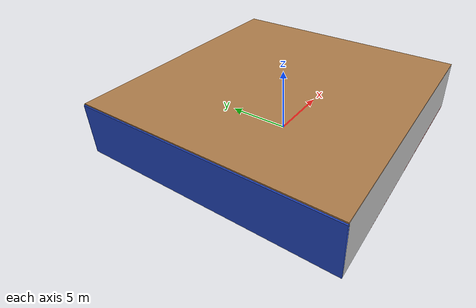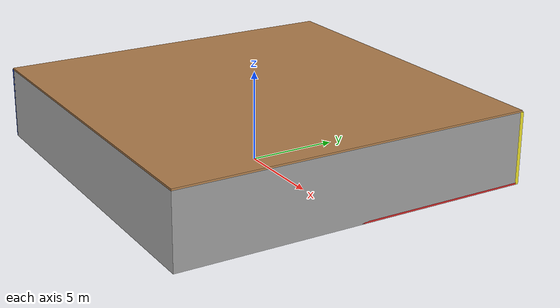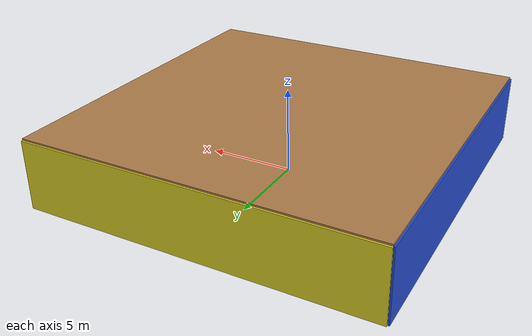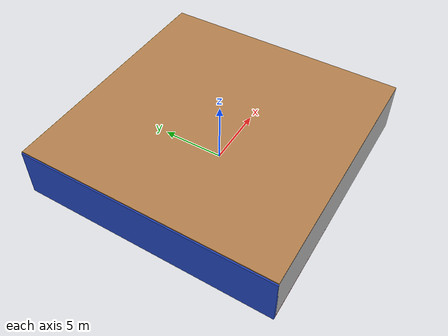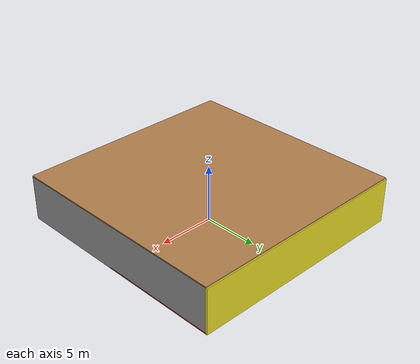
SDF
<sdf version="1.4">
 <world name="default">
  <physics type="ode">
   <max_step_size>0.001</max_step_size>
   <real_time_factor>1</real_time_factor>
   <real_time_update_rate>1000</real_time_update_rate>
   <gravity>0 0 -9.8</gravity>
  </physics>
  <scene><ambient>0.4 0.4 0.4 1</ambient><background>0.7 0.7 0.7 1</background><shadows>1</shadows></scene>
  <model name="Surrounding">
   <static>1</static>
   <link name="Ceiling">
    <collision name="Ceiling_Collision"><geometry><box><size>20 20 0.1</size></box></geometry></collision>
    <visual name="Ceiling_Visual">
     <geometry><box><size>20 20 0.1</size></box></geometry>
     <material>
      <script><uri>file://media/materials/scripts/gazebo.material</uri><name>Gazebo/WoodFloor</name></script>
     </material>
    </visual>
    <pose>0 0 4.05 0 0 0</pose>
   </link>
   <link name="Wall_South">
    <collision name="Wall_South_Collision">
     <geometry><box><size>20 0 4</size></box></geometry>
     <pose>0 0 2 0 -0 0</pose>
    </collision>
    <visual name="Wall_South_Visual">
     <pose>0 0 2 0 -0 0</pose>
     <geometry><box><size>20 0 4</size></box></geometry>
     <material>
      <script><uri>file://media/materials/scripts/gazebo.material</uri><name>Gazebo/LightOn</name></script>
     </material>
    </visual>
    <velocity_decay><linear>0</linear><angular>0</angular></velocity_decay>
    <pose>0 -10 0 0 -0 0</pose>
   </link>
   <link name="Wall_East">
    <collision name="Wall_21_Collision">
     <geometry><box><size>20 0 4</size></box></geometry>
     <pose>0 0 2 0 -0 0</pose>
    </collision>
    <visual name="Wall_21_Visual">
     <pose>0 0 2 0 -0 0</pose>
     <geometry><box><size>20 0 4</size></box></geometry>
     <material>
      <script><uri>file://media/materials/scripts/gazebo.material</uri><name>Gazebo/GreyGradientSky</name></script>
     </material>
    </visual>
    <velocity_decay><linear>0</linear><angular>0</angular></velocity_decay>
    <pose>10 0 0 0 -0 1.5708</pose>
   </link>
   <link name="Wall_North">
    <collision name="Wall_22_Collision">
     <geometry><box><size>20 0.2 4</size></box></geometry>
     <pose>0 0 2 0 -0 0</pose>
    </collision>
    <visual name="Wall_22_Visual">
     <pose>0 0 2 0 -0 0</pose>
     <geometry><box><size>20 0.2 4</size></box></geometry>
     <material>
      <script><uri>file://media/materials/scripts/gazebo.material</uri><name>Gazebo/YellowGlow</name></script>
     </material>
    </visual>
    <velocity_decay><linear>0</linear><angular>0</angular></velocity_decay>
    <pose>0 10 0 0 -0 0</pose>
   </link>
   <link name="Wall_West">
    <collision name="Wall_23_Collision">
     <geometry><box><size>20 0.2 4</size></box></geometry>
     <pose>0 0 2 0 -0 0</pose>
    </collision>
    <visual name="Wall_23_Visual">
     <pose>0 0 2 0 -0 0</pose>
     <geometry><box><size>20 0.2 4</size></box></geometry>
     <material>
      <script><uri>file://media/materials/scripts/gazebo.material</uri><name>Gazebo/BlueLaser</name></script>
     </material>
    </visual>
    <velocity_decay><linear>0</linear><angular>0</angular></velocity_decay>
    <pose>-10 0 0 0 0 -1.5708</pose>
   </link>
   <link name="Ground_link">
    <collision name="collision">
     <pose>0 0 .05 0 -0 0</pose>
     <geometry><box><size>20 20 0.1</size></box></geometry>
    </collision>
    <visual name="visual">
     <pose>0 0 .05 0 -0 0</pose>
     <geometry><box><size>20 20 0.1</size></box></geometry>
     <material>
      <script><uri>file://media/materials/scripts/gazebo.material</uri><name>Gazebo/RedBright</name></script>
     </material>
    </visual>
   </link>
   <static>1</static>
  </model>
  <spherical_coordinates>
   <surface_model>EARTH_WGS84</surface_model>
   <latitude_deg>0</latitude_deg>
   <longitude_deg>0</longitude_deg>
   <elevation>0</elevation>
   <heading_deg>0</heading_deg>
  </spherical_coordinates>
  <light name="lightball_0" type="diffuse">
   <diffuse>0.8 0.8 0.8 1</diffuse>
   <specular>0.2 0.2 0.2 1</specular>
   <attenuation>
    <range>100</range>
    <constant>0.7</constant>
    <linear>0.01</linear>
    <quadratic>0.001</quadratic>
   </attenuation>
   <direction>-0.5 0.1 -0.9</direction>
   <pose>9.04491072447 7.99038944016 0.963254562277 0 0 0</pose>
  </light>
  <light name="lightball_1" type="diffuse">
   <diffuse>0.8 0.8 0.8 1</diffuse>
   <specular>0.2 0.2 0.2 1</specular>
   <attenuation>
    <range>100</range>
    <constant>0.7</constant>
    <linear>0.01</linear>
    <quadratic>0.001</quadratic>
   </attenuation>
   <direction>-0.5 0.1 -0.9</direction>
   <pose>0.87123619087 -9.29119205396 2.59838822255 0 0 0</pose>
  </light>
  <light name="lightball_2" type="diffuse">
   <diffuse>0.8 0.8 0.8 1</diffuse>
   <specular>0.2 0.2 0.2 1</specular>
   <attenuation>
    <range>100</range>
    <constant>0.7</constant>
    <linear>0.01</linear>
    <quadratic>0.001</quadratic>
   </attenuation>
   <direction>-0.5 0.1 -0.9</direction>
   <pose>7.2574178799 -9.87923759161 2.21166419245 0 0 0</pose>
  </light>
  <light name="lightball_3" type="diffuse">
   <diffuse>0.8 0.8 0.8 1</diffuse>
   <specular>0.2 0.2 0.2 1</specular>
   <attenuation>
    <range>100</range>
    <constant>0.7</constant>
    <linear>0.01</linear>
    <quadratic>0.001</quadratic>
   </attenuation>
   <direction>-0.5 0.1 -0.9</direction>
   <pose>5.75268881891 0.912127478922 3.82390334814 0 0 0</pose>
  </light>
  <light name="lightball_4" type="diffuse">
   <diffuse>0.8 0.8 0.8 1</diffuse>
   <specular>0.2 0.2 0.2 1</specular>
   <attenuation>
    <range>100</range>
    <constant>0.7</constant>
    <linear>0.01</linear>
    <quadratic>0.001</quadratic>
   </attenuation>
   <direction>-0.5 0.1 -0.9</direction>
   <pose>3.15358595679 1.07987794287 3.75719714294 0 0 0</pose>
  </light>
  <light name="lightball_5" type="diffuse">
   <diffuse>0.8 0.8 0.8 1</diffuse>
   <specular>0.2 0.2 0.2 1</specular>
   <attenuation>
    <range>100</range>
    <constant>0.7</constant>
    <linear>0.01</linear>
    <quadratic>0.001</quadratic>
   </attenuation>
   <direction>-0.5 0.1 -0.9</direction>
   <pose>-5.58897882134 3.2289750555 2.60085259324 0 0 0</pose>
  </light>
  <light name="lightball_6" type="diffuse">
   <diffuse>0.8 0.8 0.8 1</diffuse>
   <specular>0.2 0.2 0.2 1</specular>
   <attenuation>
    <range>100</range>
    <constant>0.7</constant>
    <linear>0.01</linear>
    <quadratic>0.001</quadratic>
   </attenuation>
   <direction>-0.5 0.1 -0.9</direction>
   <pose>-1.74673041327 2.74822320804 2.4697032729 0 0 0</pose>
  </light>
  <light name="lightball_7" type="diffuse">
   <diffuse>0.8 0.8 0.8 1</diffuse>
   <specular>0.2 0.2 0.2 1</specular>
   <attenuation>
    <range>100</range>
    <constant>0.7</constant>
    <linear>0.01</linear>
    <quadratic>0.001</quadratic>
   </attenuation>
   <direction>-0.5 0.1 -0.9</direction>
   <pose>9.01002969153 7.16255431252 3.04663761216 0 0 0</pose>
  </light>
  <light name="lightball_8" type="diffuse">
   <diffuse>0.8 0.8 0.8 1</diffuse>
   <specular>0.2 0.2 0.2 1</specular>
   <attenuation>
    <range>100</range>
    <constant>0.7</constant>
    <linear>0.01</linear>
    <quadratic>0.001</quadratic>
   </attenuation>
   <direction>-0.5 0.1 -0.9</direction>
   <pose>-5.17793793034 -1.16438641344 1.26059885118 0 0 0</pose>
  </light>
  <light name="lightball_9" type="diffuse">
   <diffuse>0.8 0.8 0.8 1</diffuse>
   <specular>0.2 0.2 0.2 1</specular>
   <attenuation>
    <range>100</range>
    <constant>0.7</constant>
    <linear>0.01</linear>
    <quadratic>0.001</quadratic>
   </attenuation>
   <direction>-0.5 0.1 -0.9</direction>
   <pose>-4.5894691197 4.82385244677 3.78101526947 0 0 0</pose>
  </light>
  <light name="lightball_10" type="diffuse">
   <diffuse>0.8 0.8 0.8 1</diffuse>
   <specular>0.2 0.2 0.2 1</specular>
   <attenuation>
    <range>100</range>
    <constant>0.7</constant>
    <linear>0.01</linear>
    <quadratic>0.001</quadratic>
   </attenuation>
   <direction>-0.5 0.1 -0.9</direction>
   <pose>6.58714728667 -2.6998419966 2.57934466811 0 0 0</pose>
  </light>
  <include><uri>model://table</uri><pose>-2.24034249246 -4.58696051606 0 0 0 2.7552059203</pose></include>
  <include><uri>model://cabinet</uri><pose>1.79446947946 -1.87435207912 0 0 0 2.39013179855</pose></include>
  <include>
   <uri>model://construction_cone</uri>
   <pose>4.95838077017 -1.93293038116 0 0 0 0.421912186974</pose>
  </include>
  <include>
   <uri>model://construction_cone</uri>
   <pose>6.97340595801 -5.12514659192 0 0 0 2.08029502478</pose>
  </include>
  <include>
   <uri>model://robocup_3Dsim_goal</uri>
   <pose>7.8275674874 7.51754528121 0 0 0 0.121888947222</pose>
  </include>
 </world>
</sdf>

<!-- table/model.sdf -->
<sdf version="1.5">
  <model name="table">
    <static>true</static>
    <link name="link">
      <collision name="surface">
        <pose>0 0 1.0 0 0 0</pose>
        <geometry>
          <box>
            <size>1.5 0.8 0.03</size>
          </box>
        </geometry>
        <surface>
          <friction>
            <ode>
              <mu>0.6</mu>
              <mu2>0.6</mu2>
            </ode>
          </friction>
        </surface>
      </collision>
      <visual name="visual1">
        <pose>0 0 1.0 0 0 0</pose>
        <geometry>
          <box>
            <size>1.5 0.8 0.03</size>
          </box>
        </geometry>
        <material>
          <script>
            <uri>model://media/materials/scripts/gazebo.material</uri>
            <name>Gazebo/Wood</name>
          </script>
        </material>
      </visual>
      <collision name="front_left_leg">
        <pose>0.68 0.38 0.5 0 0 0</pose>
        <geometry>
          <cylinder>
            <radius>0.02</radius>
            <length>1.0</length>
          </cylinder>
        </geometry>
      </collision>
      <visual name="front_left_leg">
        <pose>0.68 0.38 0.5 0 0 0</pose>
        <geometry>
          <cylinder>
            <radius>0.02</radius>
            <length>1.0</length>
          </cylinder>
        </geometry>
        <material>
          <script>
            <uri>model://media/materials/scripts/gazebo.material</uri>
            <name>Gazebo/Grey</name>
          </script>
        </material>
      </visual>
      <collision name="front_right_leg">
        <pose>0.68 -0.38 0.5 0 0 0</pose>
        <geometry>
          <cylinder>
            <radius>0.02</radius>
            <length>1.0</length>
          </cylinder>
        </geometry>
      </collision>
      <visual name="front_right_leg">
        <pose>0.68 -0.38 0.5 0 0 0</pose>
        <geometry>
          <cylinder>
            <radius>0.02</radius>
            <length>1.0</length>
          </cylinder>
        </geometry>
        <material>
          <script>
            <uri>model://media/materials/scripts/gazebo.material</uri>
            <name>Gazebo/Grey</name>
          </script>
        </material>
      </visual>
      <collision name="back_right_leg">
        <pose>-0.68 -0.38 0.5 0 0 0</pose>
        <geometry>
          <cylinder>
            <radius>0.02</radius>
            <length>1.0</length>
          </cylinder>
        </geometry>
      </collision>
      <visual name="back_right_leg">
        <pose>-0.68 -0.38 0.5 0 0 0</pose>
        <geometry>
          <cylinder>
            <radius>0.02</radius>
            <length>1.0</length>
          </cylinder>
        </geometry>
        <material>
          <script>
            <uri>model://media/materials/scripts/gazebo.material</uri>
            <name>Gazebo/Grey</name>
          </script>
        </material>
      </visual>
      <collision name="back_left_leg">
        <pose>-0.68 0.38 0.5 0 0 0</pose>
        <geometry>
          <cylinder>
            <radius>0.02</radius>
            <length>1.0</length>
          </cylinder>
        </geometry>
      </collision>
      <visual name="back_left_leg">
        <pose>-0.68 0.38 0.5 0 0 0</pose>
        <geometry>
          <cylinder>
            <radius>0.02</radius>
            <length>1.0</length>
          </cylinder>
        </geometry>
        <material>
          <script>
            <uri>model://media/materials/scripts/gazebo.material</uri>
            <name>Gazebo/Grey</name>
          </script>
        </material>
      </visual>
    </link>
  </model>
</sdf>

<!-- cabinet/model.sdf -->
<sdf version="1.5">
  <model name="cabinet">
    <static>true</static>
    <link name="cabinet_bottom_plate">
      <inertial>
        <pose>0 0 -1 0 0 0</pose>
        <inertia>
          <ixx>2.050000</ixx>
          <ixy>0</ixy>
          <ixz>0</ixz>
          <iyy>2.050000</iyy>
          <iyz>0</iyz>
          <izz>2.050000</izz>
        </inertia>
        <mass>25.000000</mass>
      </inertial>
      <collision name="cabinet_bottom_plate_geom">
        <pose>0 0 0.010000 0 0 0</pose>
        <geometry>
          <box>
            <size>0.450000 0.450000 0.020000</size>
          </box>
        </geometry>
      </collision>
      <visual name="cabinet_bottom_plate_geom_visual">
        <pose>0 0 0.010000 0 0 0</pose>
        <geometry>
          <box>
            <size>0.450000 0.450000 0.020000</size>
          </box>
        </geometry>
        <material>
          <script>
            <uri>model://media/materials/scripts/gazebo.material</uri>
            <name>Gazebo/Wood</name>
          </script>
        </material>
      </visual>
      <collision name="cabinet_bottom_plate_geom_cabinet_back_plate">
        <pose>0.235000 0 0.510000 0 0 0</pose>
        <geometry>
          <box>
            <size>0.020000 0.450000 1.020000</size>
          </box>
        </geometry>
      </collision>
      <visual name="cabinet_bottom_plate_geom_cabinet_back_plate_visual">
        <pose>0.235000 0 0.510000 0 0 0</pose>
        <geometry>
          <box>
            <size>0.020000 0.450000 1.020000</size>
          </box>
        </geometry>
        <material>
          <script>
            <uri>model://media/materials/scripts/gazebo.material</uri>
            <name>Gazebo/Wood</name>
          </script>
        </material>
      </visual>
      <collision name="cabinet_bottom_plate_geom_cabinet_left_plate">
        <pose>0 0.235000 0.510000 0 0 0</pose>
        <geometry>
          <box>
            <size>0.450000 0.020000 1.020000</size>
          </box>
        </geometry>
      </collision>
      <visual name="cabinet_bottom_plate_geom_cabinet_left_plate_visual">
        <pose>0 0.235000 0.510000 0 0 0</pose>
        <geometry>
          <box>
            <size>0.450000 0.020000 1.020000</size>
          </box>
        </geometry>
        <material>
          <script>
            <uri>model://media/materials/scripts/gazebo.material</uri>
            <name>Gazebo/Wood</name>
          </script>
        </material>
      </visual>
      <collision name="cabinet_bottom_plate_geom_cabinet_middle_plate">
        <pose>0 0 0.510000 0 0 0</pose>
        <geometry>
          <box>
            <size>0.450000 0.450000 0.020000</size>
          </box>
        </geometry>
      </collision>
      <visual name="cabinet_bottom_plate_geom_cabinet_middle_plate_visual">
        <pose>0 0 0.510000 0 0 0</pose>
        <geometry>
          <box>
            <size>0.450000 0.450000 0.020000</size>
          </box>
        </geometry>
        <material>
          <script>
            <uri>model://media/materials/scripts/gazebo.material</uri>
            <name>Gazebo/Wood</name>
          </script>
        </material>
      </visual>
      <collision name="cabinet_bottom_plate_geom_cabinet_right_plate">
        <pose>0 -0.235000 0.510000 0 0 0</pose>
        <geometry>
          <box>
            <size>0.450000 0.020000 1.020000</size>
          </box>
        </geometry>
      </collision>
      <visual name="cabinet_bottom_plate_geom_cabinet_right_plate_visual">
        <pose>0 -0.235000 0.510000 0 0 0</pose>
        <geometry>
          <box>
            <size>0.450000 0.020000 1.020000</size>
          </box>
        </geometry>
        <material>
          <script>
            <uri>model://media/materials/scripts/gazebo.material</uri>
            <name>Gazebo/Wood</name>
          </script>
        </material>
      </visual>
      <collision name="cabinet_bottom_plate_geom_cabinet_top_plate">
        <pose>0 0 1.010000 0 0 0</pose>
        <geometry>
          <box>
            <size>0.450000 0.450000 0.020000</size>
          </box>
        </geometry>
      </collision>
      <visual name="cabinet_bottom_plate_geom_cabinet_top_plate_visual">
        <pose>0 0 1.010000 0 0 0</pose>
        <geometry>
          <box>
            <size>0.450000 0.450000 0.020000</size>
          </box>
        </geometry>
        <material>
          <script>
            <uri>model://media/materials/scripts/gazebo.material</uri>
            <name>Gazebo/Wood</name>
          </script>
        </material>
      </visual>
    </link>
  </model>
</sdf>

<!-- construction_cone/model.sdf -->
<sdf version="1.5">
  <model name="Construction Cone">
    <link name="link">
      <collision name="collision">
        <geometry>
          <mesh>
            <scale>10 10 10</scale>
            <uri>file://isr-testbed/construction_cone/meshes/construction_cone.dae</uri>
          </mesh>
        </geometry>
      </collision>
      <visual name="visual">
        <geometry>
          <mesh>
            <scale>10 10 10</scale>
            <uri>file://isr-testbed/construction_cone/meshes/construction_cone.dae</uri>
          </mesh>
        </geometry>
      </visual>
    </link>
  </model>
</sdf>

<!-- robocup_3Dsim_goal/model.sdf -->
<sdf version="1.5">
  <model name="robocup_3d_goal">
    <static>true</static>
    <link name="left_post">
      <pose>0 1.05 0.45 0 0 0</pose>
      <collision name="collision">
        <geometry>
          <cylinder>
            <radius>0.05</radius>
            <length>0.9</length>
          </cylinder>
        </geometry>
      </collision>
      <visual name="visual">
        <geometry>
          <cylinder>
            <radius>0.05</radius>
            <length>0.9</length>
          </cylinder>
        </geometry>
        <material>
          <script>
            <uri>file://media/materials/scripts/gazebo.material</uri>
            <name>Gazebo/ZincYellow</name>
          </script>
        </material>
      </visual>
    </link>
    <link name="left_support_horiz_lower">
      <pose>0.30 1.05 0.01 0 0 0</pose>
      <collision name="collision">
        <geometry>
          <box>
            <size>0.50 0.02 0.02</size>
          </box>
        </geometry>
      </collision>
      <visual name="visual">
        <geometry>
          <box>
            <size>0.50 0.02 0.02</size>
          </box>
        </geometry>
        <material>
          <script>
            <uri>file://media/materials/scripts/gazebo.material</uri>
            <name>Gazebo/White</name>
          </script>
        </material>
      </visual>
    </link>
    <link name="left_support_horiz_upper">
      <pose>0.30 1.05 0.79 0 0 0</pose>
      <collision name="collision">
        <geometry>
          <box>
            <size>0.50 0.02 0.02</size>
          </box>
        </geometry>
      </collision>
      <visual name="visual">
        <geometry>
          <box>
            <size>0.50 0.02 0.02</size>
          </box>
        </geometry>
        <material>
          <script>
            <uri>file://media/materials/scripts/gazebo.material</uri>
            <name>Gazebo/White</name>
          </script>
        </material>
      </visual>
    </link>
    <link name="left_support_vertical">
      <pose>0.56 1.05 0.4 0 1.5708 0</pose>
      <collision name="collision">
        <geometry>
          <box>
            <size>0.80 0.02 0.02</size>
          </box>
        </geometry>
      </collision>
      <visual name="visual">
        <geometry>
          <box>
            <size>0.80 0.02 0.02</size>
          </box>
        </geometry>
        <material>
          <script>
            <uri>file://media/materials/scripts/gazebo.material</uri>
            <name>Gazebo/White</name>
          </script>
        </material>
      </visual>
    </link>
    <link name="right_support_horiz_lower">
      <pose>0.30 -1.05 0.01 0 0 0</pose>
      <collision name="collision">
        <geometry>
          <box>
            <size>0.50 0.02 0.02</size>
          </box>
        </geometry>
      </collision>
      <visual name="visual">
        <geometry>
          <box>
            <size>0.50 0.02 0.02</size>
          </box>
        </geometry>
        <material>
          <script>
            <uri>file://media/materials/scripts/gazebo.material</uri>
            <name>Gazebo/White</name>
          </script>
        </material>
      </visual>
    </link>
    <link name="right_support_horiz_upper">
      <pose>0.30 -1.05 0.79 0 0 0</pose>
      <collision name="collision">
        <geometry>
          <box>
            <size>0.50 0.02 0.02</size>
          </box>
        </geometry>
      </collision>
      <visual name="visual">
        <geometry>
          <box>
            <size>0.50 0.02 0.02</size>
          </box>
        </geometry>
        <material>
          <script>
            <uri>file://media/materials/scripts/gazebo.material</uri>
            <name>Gazebo/White</name>
          </script>
        </material>
      </visual>
    </link>
    <link name="right_support_vertical">
      <pose>0.56 -1.05 0.4 0 1.5708 0</pose>
      <collision name="collision">
        <geometry>
          <box>
            <size>0.80 0.02 0.02</size>
          </box>
        </geometry>
      </collision>
      <visual name="visual">
        <geometry>
          <box>
            <size>0.80 0.02 0.02</size>
          </box>
        </geometry>
        <material>
          <script>
            <uri>file://media/materials/scripts/gazebo.material</uri>
            <name>Gazebo/White</name>
          </script>
        </material>
      </visual>
    </link>
    <link name="center_support_horiz_lower">
      <pose>0.56 0 0.01 0 1.5708 0</pose>
      <collision name="collision">
        <geometry>
          <box>
            <size>0.02 2.08 0.02</size>
          </box>
        </geometry>
      </collision>
      <visual name="visual">
        <geometry>
          <box>
            <size>0.02 2.08 0.02</size>
          </box>
        </geometry>
        <material>
          <script>
            <uri>file://media/materials/scripts/gazebo.material</uri>
            <name>Gazebo/White</name>
          </script>
        </material>
      </visual>
    </link>
    <link name="center_support_horiz_upper">
      <pose>0.56 0 0.79 0 1.5708 0</pose>
      <collision name="collision">
        <geometry>
          <box>
            <size>0.02 2.08 0.02</size>
          </box>
        </geometry>
      </collision>
      <visual name="visual">
        <geometry>
          <box>
            <size>0.02 2.08 0.02</size>
          </box>
        </geometry>
        <material>
          <script>
            <uri>file://media/materials/scripts/gazebo.material</uri>
            <name>Gazebo/White</name>
          </script>
        </material>
      </visual>
    </link>
    <link name="right_post">
      <pose>0 -1.05 0.45 0 0 0</pose>
      <collision name="collision">
        <geometry>
          <cylinder>
            <radius>0.05</radius>
            <length>0.9</length>
          </cylinder>
        </geometry>
      </collision>
      <visual name="visual">
        <geometry>
          <cylinder>
            <radius>0.05</radius>
            <length>0.9</length>
          </cylinder>
        </geometry>
        <material>
          <script>
            <uri>file://media/materials/scripts/gazebo.material</uri>
            <name>Gazebo/ZincYellow</name>
          </script>
        </material>
      </visual>
    </link>
    <link name="crossbar">
      <pose>0 0 0.85 1.57 1.57 0</pose>
      <collision name="collision">
        <geometry>
          <cylinder>
            <radius>0.05</radius>
            <length>2.0</length>
          </cylinder>
        </geometry>
      </collision>
      <visual name="visual">
        <geometry>
          <cylinder>
            <radius>0.05</radius>
            <length>2.0</length>
          </cylinder>
        </geometry>
        <material>
          <script>
            <uri>file://media/materials/scripts/gazebo.material</uri>
            <name>Gazebo/ZincYellow</name>
          </script>
        </material>
      </visual>
    </link>
    <link name="center_net">
      <pose>0.56 0 0.40 0 0 0</pose>
      <collision name="collision">
        <geometry>
          <box>
            <size>0.01 2.1 0.80</size>
          </box>
        </geometry>
      </collision>
      <visual name="visual">
        <geometry>
          <box>
            <size>0.01 2.1 0.80</size>
          </box>
        </geometry>
        <material>
          <script>
            <uri>model://../model_source/models/robocup09_spl_field/materials/scripts/</uri>
            <uri>model://../model_source/models/robocup09_spl_field/materials/textures/</uri>
            <name>RoboCup/Net</name>
          </script>
        </material>
      </visual>
    </link>
    <link name="left_net">
      <pose>0.30 1.05 0.40 0 0 0</pose>
      <collision name="collision">
        <geometry>
          <box>
            <size>0.50 0.01 0.76</size>
          </box>
        </geometry>
      </collision>
      <visual name="visual">
        <geometry>
          <box>
            <size>0.50 0.01 0.76</size>
          </box>
        </geometry>
        <material>
          <script>
            <uri>model://../model_source/models/robocup09_spl_field/materials/scripts/</uri>
            <uri>model://../model_source/models/robocup09_spl_field/materials/textures/</uri>
            <name>RoboCup/Net</name>
          </script>
        </material>
      </visual>
    </link>
    <link name="right_net">
      <pose>0.30 -1.05 0.40 0 0 0</pose>
      <collision name="collision">
        <geometry>
          <box>
            <size>0.50 0.01 0.76</size>
          </box>
        </geometry>
      </collision>
      <visual name="visual">
        <geometry>
          <box>
            <size>0.50 0.01 0.76</size>
          </box>
        </geometry>
        <material>
          <script>
            <uri>model://../model_source/models/robocup09_spl_field/materials/scripts/</uri>
            <uri>model://../model_source/models/robocup09_spl_field/materials/textures/</uri>
            <name>RoboCup/Net</name>
          </script>
        </material>
      </visual>
    </link>
  </model>
</sdf>
